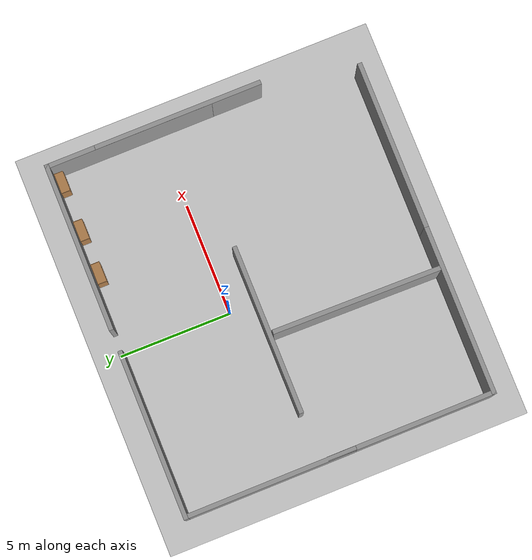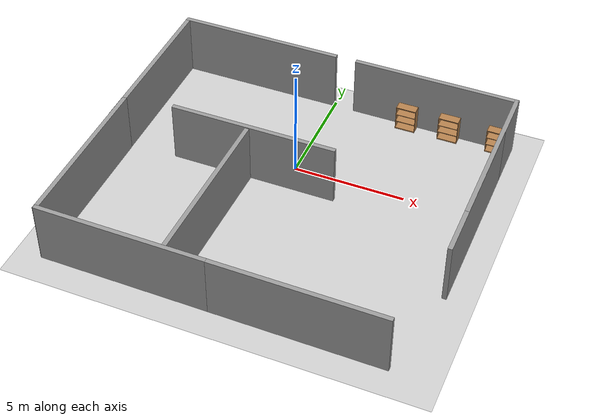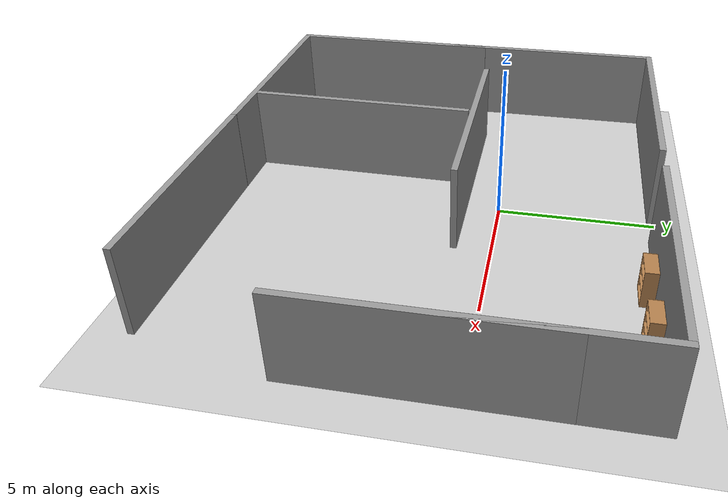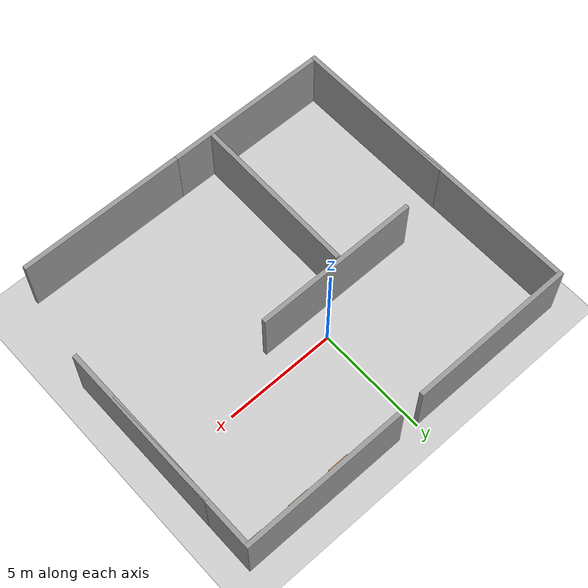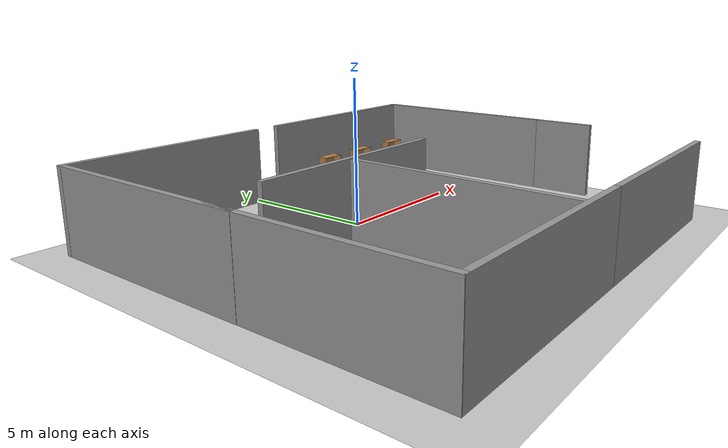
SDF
<sdf version="1.7">
 <world name="default">
  <light name="sun" type="directional">
   <pose>0 0 10 0 -0 0</pose>
   <diffuse>0.8 0.8 0.8 1</diffuse>
   <specular>0.2 0.2 0.2 1</specular>
   <attenuation>
    <range>1000</range>
    <constant>0.9</constant>
    <linear>0.01</linear>
    <quadratic>0.001</quadratic>
   </attenuation>
   <direction>-0.5 0.1 -0.9</direction>
   <spot><inner_angle>0</inner_angle><outer_angle>0</outer_angle><falloff>0</falloff></spot>
  </light>
  <model name="ground_plane">
   <static>1</static>
   <link name="link">
    <collision name="collision">
     <geometry><plane><normal>0 0 1</normal><size>100 100</size></plane></geometry>
     <surface><friction><ode><mu>100</mu><mu2>50</mu2></ode></friction></surface>
    </collision>
    <visual name="visual">
     <cast_shadows>0</cast_shadows>
     <geometry><plane><normal>0 0 1</normal><size>100 100</size></plane></geometry>
     <material>
      <script><uri>file://media/materials/scripts/gazebo.material</uri><name>Gazebo/Grey</name></script>
     </material>
    </visual>
   </link>
  </model>
  <gravity>0 0 -9.8</gravity>
  <magnetic_field>6e-06 2.3e-05 -4.2e-05</magnetic_field>
  <atmosphere type="adiabatic"/>
  <physics type="ode">
   <max_step_size>0.001</max_step_size>
   <real_time_factor>1</real_time_factor>
   <real_time_update_rate>1000</real_time_update_rate>
  </physics>
  <scene><ambient>0.4 0.4 0.4 1</ambient><background>0.7 0.7 0.7 1</background><shadows>1</shadows></scene>
  <spherical_coordinates>
   <surface_model>EARTH_WGS84</surface_model>
   <latitude_deg>0</latitude_deg>
   <longitude_deg>0</longitude_deg>
   <elevation>0</elevation>
   <heading_deg>0</heading_deg>
  </spherical_coordinates>
  <model name="grey_wall">
   <static>1</static>
   <link name="link">
    <pose>0 0 1.4 0 -0 0</pose>
    <collision name="collision"><geometry><box><size>7.5 0.2 2.8</size></box></geometry></collision>
    <visual name="visual">
     <cast_shadows>0</cast_shadows>
     <geometry><box><size>7.5 0.2 2.8</size></box></geometry>
     <material>
      <script>
       <uri>model://grey_wall/materials/scripts</uri>
       <uri>model://grey_wall/materials/textures</uri>
       <name>vrc/grey_wall</name>
      </script>
     </material>
    </visual>
   </link>
   <pose>-3.77245 4.87059 0 0 -0 0</pose>
  </model>
  <model name="grey_wall_0">
   <static>1</static>
   <link name="link">
    <pose>0 0 1.4 0 -0 0</pose>
    <collision name="collision"><geometry><box><size>7.5 0.2 2.8</size></box></geometry></collision>
    <visual name="visual">
     <cast_shadows>0</cast_shadows>
     <geometry><box><size>7.5 0.2 2.8</size></box></geometry>
     <material>
      <script>
       <uri>model://grey_wall/materials/scripts</uri>
       <uri>model://grey_wall/materials/textures</uri>
       <name>vrc/grey_wall</name>
      </script>
     </material>
    </visual>
   </link>
   <pose>-7.41372 1.02136 0 0 -0 1.57266</pose>
  </model>
  <model name="grey_wall_1">
   <static>1</static>
   <link name="link">
    <pose>0 0 1.4 0 -0 0</pose>
    <collision name="collision"><geometry><box><size>7.5 0.2 2.8</size></box></geometry></collision>
    <visual name="visual">
     <cast_shadows>0</cast_shadows>
     <geometry><box><size>7.5 0.2 2.8</size></box></geometry>
     <material>
      <script>
       <uri>model://grey_wall/materials/scripts</uri>
       <uri>model://grey_wall/materials/textures</uri>
       <name>vrc/grey_wall</name>
      </script>
     </material>
    </visual>
   </link>
   <pose>4.65677 4.8735 0 0 -0 0</pose>
  </model>
  <model name="grey_wall_0_clone">
   <static>1</static>
   <link name="link">
    <pose>0 0 1.4 0 -0 0</pose>
    <collision name="collision"><geometry><box><size>7.5 0.2 2.8</size></box></geometry></collision>
    <visual name="visual">
     <cast_shadows>0</cast_shadows>
     <geometry><box><size>7.5 0.2 2.8</size></box></geometry>
     <material>
      <script>
       <uri>model://grey_wall/materials/scripts</uri>
       <uri>model://grey_wall/materials/textures</uri>
       <name>vrc/grey_wall</name>
      </script>
     </material>
    </visual>
   </link>
   <pose>-7.3932 -5.21877 0 0 -0 1.57266</pose>
  </model>
  <model name="grey_wall_0_clone_0">
   <static>1</static>
   <link name="link">
    <pose>0 0 1.4 0 -0 0</pose>
    <collision name="collision"><geometry><box><size>7.5 0.2 2.8</size></box></geometry></collision>
    <visual name="visual">
     <cast_shadows>0</cast_shadows>
     <geometry><box><size>7.5 0.2 2.8</size></box></geometry>
     <material>
      <script>
       <uri>model://grey_wall/materials/scripts</uri>
       <uri>model://grey_wall/materials/textures</uri>
       <name>vrc/grey_wall</name>
      </script>
     </material>
    </visual>
   </link>
   <pose>8.31742 1.21762 0 0 -0 1.57266</pose>
  </model>
  <model name="grey_wall_0_clone_1">
   <static>1</static>
   <link name="link">
    <pose>0 0 1.4 0 -0 0</pose>
    <collision name="collision"><geometry><box><size>7.5 0.2 2.8</size></box></geometry></collision>
    <visual name="visual">
     <cast_shadows>0</cast_shadows>
     <geometry><box><size>7.5 0.2 2.8</size></box></geometry>
     <material>
      <script>
       <uri>model://grey_wall/materials/scripts</uri>
       <uri>model://grey_wall/materials/textures</uri>
       <name>vrc/grey_wall</name>
      </script>
     </material>
    </visual>
   </link>
   <pose>-3.71734 -8.88734 0 0 0 -0.004407</pose>
  </model>
  <model name="grey_wall_0_clone_1_clone">
   <static>1</static>
   <link name="link">
    <pose>0 0 1.4 0 -0 0</pose>
    <collision name="collision"><geometry><box><size>7.5 0.2 2.8</size></box></geometry></collision>
    <visual name="visual">
     <cast_shadows>0</cast_shadows>
     <geometry><box><size>7.5 0.2 2.8</size></box></geometry>
     <material>
      <script>
       <uri>model://grey_wall/materials/scripts</uri>
       <uri>model://grey_wall/materials/textures</uri>
       <name>vrc/grey_wall</name>
      </script>
     </material>
    </visual>
   </link>
   <pose>3.77756 -8.92266 0 0 0 -0.004407</pose>
  </model>
  <model name="grey_wall_0_clone_0_clone">
   <static>1</static>
   <link name="link">
    <pose>0 0 1.4 0 -0 0</pose>
    <collision name="collision"><geometry><box><size>7.5 0.2 2.8</size></box></geometry></collision>
    <visual name="visual">
     <cast_shadows>0</cast_shadows>
     <geometry><box><size>7.5 0.2 2.8</size></box></geometry>
     <material>
      <script>
       <uri>model://grey_wall/materials/scripts</uri>
       <uri>model://grey_wall/materials/textures</uri>
       <name>vrc/grey_wall</name>
      </script>
     </material>
    </visual>
   </link>
   <pose>8.32295 -1.03099 0 0 -0 1.57266</pose>
  </model>
  <model name="grey_wall_2">
   <static>1</static>
   <link name="link">
    <pose>0 0 1.4 0 -0 0</pose>
    <collision name="collision"><geometry><box><size>7.5 0.2 2.8</size></box></geometry></collision>
    <visual name="visual">
     <cast_shadows>0</cast_shadows>
     <geometry><box><size>7.5 0.2 2.8</size></box></geometry>
     <material>
      <script>
       <uri>model://grey_wall/materials/scripts</uri>
       <uri>model://grey_wall/materials/textures</uri>
       <name>vrc/grey_wall</name>
      </script>
     </material>
    </visual>
   </link>
   <pose>-1.7213 -5.05623 0 0 0 -1.58463</pose>
  </model>
  <model name="grey_wall_3">
   <static>1</static>
   <link name="link">
    <pose>0 0 1.4 0 -0 0</pose>
    <collision name="collision"><geometry><box><size>7.5 0.2 2.8</size></box></geometry></collision>
    <visual name="visual">
     <cast_shadows>0</cast_shadows>
     <geometry><box><size>7.5 0.2 2.8</size></box></geometry>
     <material>
      <script>
       <uri>model://grey_wall/materials/scripts</uri>
       <uri>model://grey_wall/materials/textures</uri>
       <name>vrc/grey_wall</name>
      </script>
     </material>
    </visual>
   </link>
   <pose>-1.48748 -1.16172 0 0 -0 0</pose>
  </model>
  <model name="bookshelf">
   <static>1</static>
   <link name="link">
    <inertial><mass>1</mass></inertial>
    <collision name="back">
     <pose>0 0.005 0.6 0 -0 0</pose>
     <geometry><box><size>0.9 0.01 1.2</size></box></geometry>
    </collision>
    <visual name="visual1">
     <pose>0 0.005 0.6 0 -0 0</pose>
     <geometry><box><size>0.9 0.01 1.2</size></box></geometry>
     <material>
      <script><uri>file://media/materials/scripts/gazebo.material</uri><name>Gazebo/Wood</name></script>
     </material>
    </visual>
    <collision name="left_side">
     <pose>0.45 -0.195 0.6 0 -0 0</pose>
     <geometry><box><size>0.02 0.4 1.2</size></box></geometry>
    </collision>
    <visual name="visual2">
     <pose>0.45 -0.195 0.6 0 -0 0</pose>
     <geometry><box><size>0.02 0.4 1.2</size></box></geometry>
     <material>
      <script><uri>file://media/materials/scripts/gazebo.material</uri><name>Gazebo/Wood</name></script>
     </material>
    </visual>
    <collision name="right_side">
     <pose>-0.45 -0.195 0.6 0 -0 0</pose>
     <geometry><box><size>0.02 0.4 1.2</size></box></geometry>
    </collision>
    <visual name="visual3">
     <pose>-0.45 -0.195 0.6 0 -0 0</pose>
     <geometry><box><size>0.02 0.4 1.2</size></box></geometry>
     <material>
      <script><uri>file://media/materials/scripts/gazebo.material</uri><name>Gazebo/Wood</name></script>
     </material>
    </visual>
    <collision name="bottom">
     <pose>0 -0.195 0.03 0 -0 0</pose>
     <geometry><box><size>0.88 0.4 0.06</size></box></geometry>
    </collision>
    <visual name="visual4">
     <pose>0 -0.195 0.03 0 -0 0</pose>
     <geometry><box><size>0.88 0.4 0.06</size></box></geometry>
     <material>
      <script><uri>file://media/materials/scripts/gazebo.material</uri><name>Gazebo/Wood</name></script>
     </material>
    </visual>
    <collision name="top">
     <pose>0 -0.195 1.19 0 -0 0</pose>
     <geometry><box><size>0.88 0.4 0.02</size></box></geometry>
    </collision>
    <visual name="visual5">
     <pose>0 -0.195 1.19 0 -0 0</pose>
     <geometry><box><size>0.88 0.4 0.02</size></box></geometry>
     <material>
      <script><uri>file://media/materials/scripts/gazebo.material</uri><name>Gazebo/Wood</name></script>
     </material>
    </visual>
    <collision name="low_shelf">
     <pose>0 -0.195 0.43 0 -0 0</pose>
     <geometry><box><size>0.88 0.4 0.02</size></box></geometry>
    </collision>
    <visual name="visual6">
     <pose>0 -0.195 0.43 0 -0 0</pose>
     <geometry><box><size>0.88 0.4 0.02</size></box></geometry>
     <material>
      <script><uri>file://media/materials/scripts/gazebo.material</uri><name>Gazebo/Wood</name></script>
     </material>
    </visual>
    <collision name="high_shelf">
     <pose>0 -0.195 0.8 0 -0 0</pose>
     <geometry><box><size>0.88 0.4 0.02</size></box></geometry>
    </collision>
    <visual name="visual7">
     <pose>0 -0.195 0.8 0 -0 0</pose>
     <geometry><box><size>0.88 0.4 0.02</size></box></geometry>
     <material>
      <script><uri>file://media/materials/scripts/gazebo.material</uri><name>Gazebo/Wood</name></script>
     </material>
    </visual>
   </link>
   <pose>7.75756 4.76233 0 0 -0 0</pose>
  </model>
  <model name="bookshelf_0">
   <static>1</static>
   <link name="link">
    <inertial><mass>1</mass></inertial>
    <collision name="back">
     <pose>0 0.005 0.6 0 -0 0</pose>
     <geometry><box><size>0.9 0.01 1.2</size></box></geometry>
    </collision>
    <visual name="visual1">
     <pose>0 0.005 0.6 0 -0 0</pose>
     <geometry><box><size>0.9 0.01 1.2</size></box></geometry>
     <material>
      <script><uri>file://media/materials/scripts/gazebo.material</uri><name>Gazebo/Wood</name></script>
     </material>
    </visual>
    <collision name="left_side">
     <pose>0.45 -0.195 0.6 0 -0 0</pose>
     <geometry><box><size>0.02 0.4 1.2</size></box></geometry>
    </collision>
    <visual name="visual2">
     <pose>0.45 -0.195 0.6 0 -0 0</pose>
     <geometry><box><size>0.02 0.4 1.2</size></box></geometry>
     <material>
      <script><uri>file://media/materials/scripts/gazebo.material</uri><name>Gazebo/Wood</name></script>
     </material>
    </visual>
    <collision name="right_side">
     <pose>-0.45 -0.195 0.6 0 -0 0</pose>
     <geometry><box><size>0.02 0.4 1.2</size></box></geometry>
    </collision>
    <visual name="visual3">
     <pose>-0.45 -0.195 0.6 0 -0 0</pose>
     <geometry><box><size>0.02 0.4 1.2</size></box></geometry>
     <material>
      <script><uri>file://media/materials/scripts/gazebo.material</uri><name>Gazebo/Wood</name></script>
     </material>
    </visual>
    <collision name="bottom">
     <pose>0 -0.195 0.03 0 -0 0</pose>
     <geometry><box><size>0.88 0.4 0.06</size></box></geometry>
    </collision>
    <visual name="visual4">
     <pose>0 -0.195 0.03 0 -0 0</pose>
     <geometry><box><size>0.88 0.4 0.06</size></box></geometry>
     <material>
      <script><uri>file://media/materials/scripts/gazebo.material</uri><name>Gazebo/Wood</name></script>
     </material>
    </visual>
    <collision name="top">
     <pose>0 -0.195 1.19 0 -0 0</pose>
     <geometry><box><size>0.88 0.4 0.02</size></box></geometry>
    </collision>
    <visual name="visual5">
     <pose>0 -0.195 1.19 0 -0 0</pose>
     <geometry><box><size>0.88 0.4 0.02</size></box></geometry>
     <material>
      <script><uri>file://media/materials/scripts/gazebo.material</uri><name>Gazebo/Wood</name></script>
     </material>
    </visual>
    <collision name="low_shelf">
     <pose>0 -0.195 0.43 0 -0 0</pose>
     <geometry><box><size>0.88 0.4 0.02</size></box></geometry>
    </collision>
    <visual name="visual6">
     <pose>0 -0.195 0.43 0 -0 0</pose>
     <geometry><box><size>0.88 0.4 0.02</size></box></geometry>
     <material>
      <script><uri>file://media/materials/scripts/gazebo.material</uri><name>Gazebo/Wood</name></script>
     </material>
    </visual>
    <collision name="high_shelf">
     <pose>0 -0.195 0.8 0 -0 0</pose>
     <geometry><box><size>0.88 0.4 0.02</size></box></geometry>
    </collision>
    <visual name="visual7">
     <pose>0 -0.195 0.8 0 -0 0</pose>
     <geometry><box><size>0.88 0.4 0.02</size></box></geometry>
     <material>
      <script><uri>file://media/materials/scripts/gazebo.material</uri><name>Gazebo/Wood</name></script>
     </material>
    </visual>
   </link>
   <pose>5.53317 4.7536 0 0 -0 0</pose>
  </model>
  <model name="bookshelf_2">
   <static>1</static>
   <link name="link">
    <inertial><mass>1</mass></inertial>
    <collision name="back">
     <pose>0 0.005 0.6 0 -0 0</pose>
     <geometry><box><size>0.9 0.01 1.2</size></box></geometry>
    </collision>
    <visual name="visual1">
     <pose>0 0.005 0.6 0 -0 0</pose>
     <geometry><box><size>0.9 0.01 1.2</size></box></geometry>
     <material>
      <script><uri>file://media/materials/scripts/gazebo.material</uri><name>Gazebo/Wood</name></script>
     </material>
    </visual>
    <collision name="left_side">
     <pose>0.45 -0.195 0.6 0 -0 0</pose>
     <geometry><box><size>0.02 0.4 1.2</size></box></geometry>
    </collision>
    <visual name="visual2">
     <pose>0.45 -0.195 0.6 0 -0 0</pose>
     <geometry><box><size>0.02 0.4 1.2</size></box></geometry>
     <material>
      <script><uri>file://media/materials/scripts/gazebo.material</uri><name>Gazebo/Wood</name></script>
     </material>
    </visual>
    <collision name="right_side">
     <pose>-0.45 -0.195 0.6 0 -0 0</pose>
     <geometry><box><size>0.02 0.4 1.2</size></box></geometry>
    </collision>
    <visual name="visual3">
     <pose>-0.45 -0.195 0.6 0 -0 0</pose>
     <geometry><box><size>0.02 0.4 1.2</size></box></geometry>
     <material>
      <script><uri>file://media/materials/scripts/gazebo.material</uri><name>Gazebo/Wood</name></script>
     </material>
    </visual>
    <collision name="bottom">
     <pose>0 -0.195 0.03 0 -0 0</pose>
     <geometry><box><size>0.88 0.4 0.06</size></box></geometry>
    </collision>
    <visual name="visual4">
     <pose>0 -0.195 0.03 0 -0 0</pose>
     <geometry><box><size>0.88 0.4 0.06</size></box></geometry>
     <material>
      <script><uri>file://media/materials/scripts/gazebo.material</uri><name>Gazebo/Wood</name></script>
     </material>
    </visual>
    <collision name="top">
     <pose>0 -0.195 1.19 0 -0 0</pose>
     <geometry><box><size>0.88 0.4 0.02</size></box></geometry>
    </collision>
    <visual name="visual5">
     <pose>0 -0.195 1.19 0 -0 0</pose>
     <geometry><box><size>0.88 0.4 0.02</size></box></geometry>
     <material>
      <script><uri>file://media/materials/scripts/gazebo.material</uri><name>Gazebo/Wood</name></script>
     </material>
    </visual>
    <collision name="low_shelf">
     <pose>0 -0.195 0.43 0 -0 0</pose>
     <geometry><box><size>0.88 0.4 0.02</size></box></geometry>
    </collision>
    <visual name="visual6">
     <pose>0 -0.195 0.43 0 -0 0</pose>
     <geometry><box><size>0.88 0.4 0.02</size></box></geometry>
     <material>
      <script><uri>file://media/materials/scripts/gazebo.material</uri><name>Gazebo/Wood</name></script>
     </material>
    </visual>
    <collision name="high_shelf">
     <pose>0 -0.195 0.8 0 -0 0</pose>
     <geometry><box><size>0.88 0.4 0.02</size></box></geometry>
    </collision>
    <visual name="visual7">
     <pose>0 -0.195 0.8 0 -0 0</pose>
     <geometry><box><size>0.88 0.4 0.02</size></box></geometry>
     <material>
      <script><uri>file://media/materials/scripts/gazebo.material</uri><name>Gazebo/Wood</name></script>
     </material>
    </visual>
   </link>
   <pose>3.55548 4.73749 -0 0 -0 0</pose>
  </model>
 </world>
</sdf>
